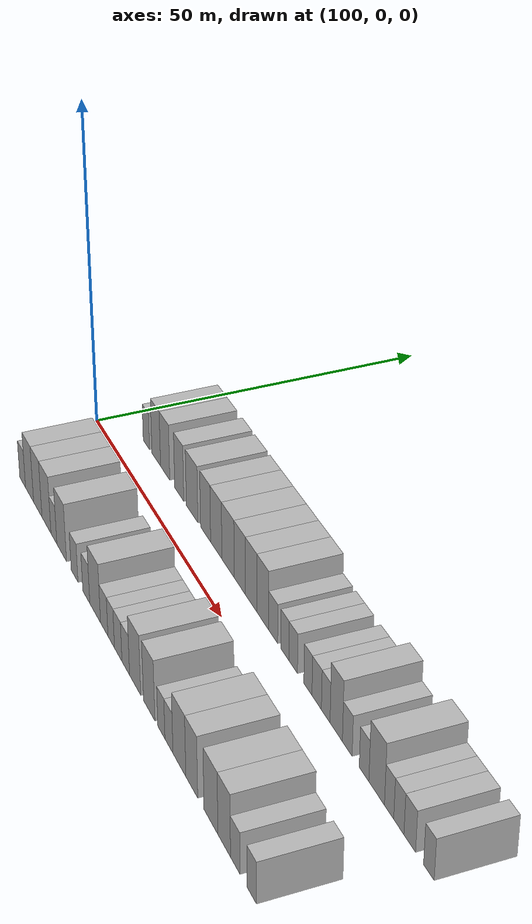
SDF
<sdf version="1.6">
 <world name="default">
  <model name="building_24">
   <static>1</static>
   <pose>108.6843 9.5000 0 0.000000 0.000000 1.570796</pose>
   <link name="link">
    <pose>0 0 3.00 0 0 0</pose>
    <collision name="collision"><geometry><box><size>10.0000 2.6677 6.0000</size></box></geometry></collision>
    <visual name="visual">
     <cast_shadows>0</cast_shadows>
     <geometry><box><size>10.0000 2.6677 6.0000</size></box></geometry>
     <material>
      <script>
       <uri>model://HANNAS_wall/materials/scripts</uri>
       <uri>model://HANNAS_wall/materials/textures</uri>
       <name>vrc/HANNAS_wall</name>
      </script>
     </material>
    </visual>
   </link>
  </model>
  <model name="building_25">
   <static>1</static>
   <pose>112.8357 9.5000 0 0.000000 0.000000 1.570796</pose>
   <link name="link">
    <pose>0 0 4.50 0 0 0</pose>
    <collision name="collision"><geometry><box><size>10.0000 3.6351 9.0000</size></box></geometry></collision>
    <visual name="visual">
     <cast_shadows>0</cast_shadows>
     <geometry><box><size>10.0000 3.6351 9.0000</size></box></geometry>
     <material>
      <script>
       <uri>model://HANNAS_wall/materials/scripts</uri>
       <uri>model://HANNAS_wall/materials/textures</uri>
       <name>vrc/HANNAS_wall</name>
      </script>
     </material>
    </visual>
   </link>
  </model>
  <model name="building_26">
   <static>1</static>
   <pose>116.5429 9.5000 0 0.000000 0.000000 1.570796</pose>
   <link name="link">
    <pose>0 0 4.50 0 0 0</pose>
    <collision name="collision"><geometry><box><size>10.0000 3.7794 9.0000</size></box></geometry></collision>
    <visual name="visual">
     <cast_shadows>0</cast_shadows>
     <geometry><box><size>10.0000 3.7794 9.0000</size></box></geometry>
     <material>
      <script>
       <uri>model://HANNAS_wall/materials/scripts</uri>
       <uri>model://HANNAS_wall/materials/textures</uri>
       <name>vrc/HANNAS_wall</name>
      </script>
     </material>
    </visual>
   </link>
  </model>
  <model name="building_27">
   <static>1</static>
   <pose>122.2377 9.5000 0 0.000000 0.000000 1.570796</pose>
   <link name="link">
    <pose>0 0 4.50 0 0 0</pose>
    <collision name="collision"><geometry><box><size>10.0000 3.6102 9.0000</size></box></geometry></collision>
    <visual name="visual">
     <cast_shadows>0</cast_shadows>
     <geometry><box><size>10.0000 3.6102 9.0000</size></box></geometry>
     <material>
      <script>
       <uri>model://HANNAS_wall/materials/scripts</uri>
       <uri>model://HANNAS_wall/materials/textures</uri>
       <name>vrc/HANNAS_wall</name>
      </script>
     </material>
    </visual>
   </link>
  </model>
  <model name="building_28">
   <static>1</static>
   <pose>127.2770 9.5000 0 0.000000 0.000000 1.570796</pose>
   <link name="link">
    <pose>0 0 4.50 0 0 0</pose>
    <collision name="collision"><geometry><box><size>10.0000 4.4685 9.0000</size></box></geometry></collision>
    <visual name="visual">
     <cast_shadows>0</cast_shadows>
     <geometry><box><size>10.0000 4.4685 9.0000</size></box></geometry>
     <material>
      <script>
       <uri>model://HANNAS_wall/materials/scripts</uri>
       <uri>model://HANNAS_wall/materials/textures</uri>
       <name>vrc/HANNAS_wall</name>
      </script>
     </material>
    </visual>
   </link>
  </model>
  <model name="building_29">
   <static>1</static>
   <pose>132.4076 9.5000 0 0.000000 0.000000 1.570796</pose>
   <link name="link">
    <pose>0 0 4.50 0 0 0</pose>
    <collision name="collision"><geometry><box><size>10.0000 3.7927 9.0000</size></box></geometry></collision>
    <visual name="visual">
     <cast_shadows>0</cast_shadows>
     <geometry><box><size>10.0000 3.7927 9.0000</size></box></geometry>
     <material>
      <script>
       <uri>model://HANNAS_wall/materials/scripts</uri>
       <uri>model://HANNAS_wall/materials/textures</uri>
       <name>vrc/HANNAS_wall</name>
      </script>
     </material>
    </visual>
   </link>
  </model>
  <model name="building_30">
   <static>1</static>
   <pose>136.3838 9.5000 0 0.000000 0.000000 1.570796</pose>
   <link name="link">
    <pose>0 0 4.50 0 0 0</pose>
    <collision name="collision"><geometry><box><size>10.0000 4.1597 9.0000</size></box></geometry></collision>
    <visual name="visual">
     <cast_shadows>0</cast_shadows>
     <geometry><box><size>10.0000 4.1597 9.0000</size></box></geometry>
     <material>
      <script>
       <uri>model://HANNAS_wall/materials/scripts</uri>
       <uri>model://HANNAS_wall/materials/textures</uri>
       <name>vrc/HANNAS_wall</name>
      </script>
     </material>
    </visual>
   </link>
  </model>
  <model name="building_31">
   <static>1</static>
   <pose>140.6726 9.5000 0 0.000000 0.000000 1.570796</pose>
   <link name="link">
    <pose>0 0 4.50 0 0 0</pose>
    <collision name="collision"><geometry><box><size>10.0000 4.4179 9.0000</size></box></geometry></collision>
    <visual name="visual">
     <cast_shadows>0</cast_shadows>
     <geometry><box><size>10.0000 4.4179 9.0000</size></box></geometry>
     <material>
      <script>
       <uri>model://HANNAS_wall/materials/scripts</uri>
       <uri>model://HANNAS_wall/materials/textures</uri>
       <name>vrc/HANNAS_wall</name>
      </script>
     </material>
    </visual>
   </link>
  </model>
  <model name="building_32">
   <static>1</static>
   <pose>144.8683 9.5000 0 0.000000 0.000000 1.570796</pose>
   <link name="link">
    <pose>0 0 4.50 0 0 0</pose>
    <collision name="collision"><geometry><box><size>10.0000 3.9735 9.0000</size></box></geometry></collision>
    <visual name="visual">
     <cast_shadows>0</cast_shadows>
     <geometry><box><size>10.0000 3.9735 9.0000</size></box></geometry>
     <material>
      <script>
       <uri>model://HANNAS_wall/materials/scripts</uri>
       <uri>model://HANNAS_wall/materials/textures</uri>
       <name>vrc/HANNAS_wall</name>
      </script>
     </material>
    </visual>
   </link>
  </model>
  <model name="building_33">
   <static>1</static>
   <pose>148.8022 9.5000 0 0.000000 0.000000 1.570796</pose>
   <link name="link">
    <pose>0 0 4.50 0 0 0</pose>
    <collision name="collision"><geometry><box><size>10.0000 3.8945 9.0000</size></box></geometry></collision>
    <visual name="visual">
     <cast_shadows>0</cast_shadows>
     <geometry><box><size>10.0000 3.8945 9.0000</size></box></geometry>
     <material>
      <script>
       <uri>model://HANNAS_wall/materials/scripts</uri>
       <uri>model://HANNAS_wall/materials/textures</uri>
       <name>vrc/HANNAS_wall</name>
      </script>
     </material>
    </visual>
   </link>
  </model>
  <model name="building_34">
   <static>1</static>
   <pose>152.7187 9.5000 0 0.000000 0.000000 1.570796</pose>
   <link name="link">
    <pose>0 0 4.50 0 0 0</pose>
    <collision name="collision"><geometry><box><size>10.0000 3.9385 9.0000</size></box></geometry></collision>
    <visual name="visual">
     <cast_shadows>0</cast_shadows>
     <geometry><box><size>10.0000 3.9385 9.0000</size></box></geometry>
     <material>
      <script>
       <uri>model://HANNAS_wall/materials/scripts</uri>
       <uri>model://HANNAS_wall/materials/textures</uri>
       <name>vrc/HANNAS_wall</name>
      </script>
     </material>
    </visual>
   </link>
  </model>
  <model name="building_35">
   <static>1</static>
   <pose>156.1728 9.5000 0 0.000000 0.000000 1.570796</pose>
   <link name="link">
    <pose>0 0 3.00 0 0 0</pose>
    <collision name="collision"><geometry><box><size>10.0000 2.9697 6.0000</size></box></geometry></collision>
    <visual name="visual">
     <cast_shadows>0</cast_shadows>
     <geometry><box><size>10.0000 2.9697 6.0000</size></box></geometry>
     <material>
      <script>
       <uri>model://HANNAS_wall/materials/scripts</uri>
       <uri>model://HANNAS_wall/materials/textures</uri>
       <name>vrc/HANNAS_wall</name>
      </script>
     </material>
    </visual>
   </link>
  </model>
  <model name="building_36">
   <static>1</static>
   <pose>159.9766 9.5000 0 0.000000 0.000000 1.570796</pose>
   <link name="link">
    <pose>0 0 3.00 0 0 0</pose>
    <collision name="collision"><geometry><box><size>10.0000 2.6379 6.0000</size></box></geometry></collision>
    <visual name="visual">
     <cast_shadows>0</cast_shadows>
     <geometry><box><size>10.0000 2.6379 6.0000</size></box></geometry>
     <material>
      <script>
       <uri>model://HANNAS_wall/materials/scripts</uri>
       <uri>model://HANNAS_wall/materials/textures</uri>
       <name>vrc/HANNAS_wall</name>
      </script>
     </material>
    </visual>
   </link>
  </model>
  <model name="building_37">
   <static>1</static>
   <pose>162.6449 9.5000 0 0.000000 0.000000 1.570796</pose>
   <link name="link">
    <pose>0 0 3.00 0 0 0</pose>
    <collision name="collision"><geometry><box><size>10.0000 2.6988 6.0000</size></box></geometry></collision>
    <visual name="visual">
     <cast_shadows>0</cast_shadows>
     <geometry><box><size>10.0000 2.6988 6.0000</size></box></geometry>
     <material>
      <script>
       <uri>model://HANNAS_wall/materials/scripts</uri>
       <uri>model://HANNAS_wall/materials/textures</uri>
       <name>vrc/HANNAS_wall</name>
      </script>
     </material>
    </visual>
   </link>
  </model>
  <model name="building_38">
   <static>1</static>
   <pose>167.2422 9.5000 0 0.000000 0.000000 1.570796</pose>
   <link name="link">
    <pose>0 0 3.00 0 0 0</pose>
    <collision name="collision"><geometry><box><size>10.0000 2.4957 6.0000</size></box></geometry></collision>
    <visual name="visual">
     <cast_shadows>0</cast_shadows>
     <geometry><box><size>10.0000 2.4957 6.0000</size></box></geometry>
     <material>
      <script>
       <uri>model://HANNAS_wall/materials/scripts</uri>
       <uri>model://HANNAS_wall/materials/textures</uri>
       <name>vrc/HANNAS_wall</name>
      </script>
     </material>
    </visual>
   </link>
  </model>
  <model name="building_39">
   <static>1</static>
   <pose>169.9129 9.5000 0 0.000000 0.000000 1.570796</pose>
   <link name="link">
    <pose>0 0 3.00 0 0 0</pose>
    <collision name="collision"><geometry><box><size>10.0000 2.8458 6.0000</size></box></geometry></collision>
    <visual name="visual">
     <cast_shadows>0</cast_shadows>
     <geometry><box><size>10.0000 2.8458 6.0000</size></box></geometry>
     <material>
      <script>
       <uri>model://HANNAS_wall/materials/scripts</uri>
       <uri>model://HANNAS_wall/materials/textures</uri>
       <name>vrc/HANNAS_wall</name>
      </script>
     </material>
    </visual>
   </link>
  </model>
  <model name="building_40">
   <static>1</static>
   <pose>172.6208 9.5000 0 0.000000 0.000000 1.570796</pose>
   <link name="link">
    <pose>0 0 3.00 0 0 0</pose>
    <collision name="collision"><geometry><box><size>10.0000 2.5699 6.0000</size></box></geometry></collision>
    <visual name="visual">
     <cast_shadows>0</cast_shadows>
     <geometry><box><size>10.0000 2.5699 6.0000</size></box></geometry>
     <material>
      <script>
       <uri>model://HANNAS_wall/materials/scripts</uri>
       <uri>model://HANNAS_wall/materials/textures</uri>
       <name>vrc/HANNAS_wall</name>
      </script>
     </material>
    </visual>
   </link>
  </model>
  <model name="building_41">
   <static>1</static>
   <pose>175.7122 9.5000 0 0.000000 0.000000 1.570796</pose>
   <link name="link">
    <pose>0 0 4.50 0 0 0</pose>
    <collision name="collision"><geometry><box><size>10.0000 3.6127 9.0000</size></box></geometry></collision>
    <visual name="visual">
     <cast_shadows>0</cast_shadows>
     <geometry><box><size>10.0000 3.6127 9.0000</size></box></geometry>
     <material>
      <script>
       <uri>model://HANNAS_wall/materials/scripts</uri>
       <uri>model://HANNAS_wall/materials/textures</uri>
       <name>vrc/HANNAS_wall</name>
      </script>
     </material>
    </visual>
   </link>
  </model>
  <model name="building_42">
   <static>1</static>
   <pose>178.9154 9.5000 0 0.000000 0.000000 1.570796</pose>
   <link name="link">
    <pose>0 0 3.00 0 0 0</pose>
    <collision name="collision"><geometry><box><size>10.0000 2.7937 6.0000</size></box></geometry></collision>
    <visual name="visual">
     <cast_shadows>0</cast_shadows>
     <geometry><box><size>10.0000 2.7937 6.0000</size></box></geometry>
     <material>
      <script>
       <uri>model://HANNAS_wall/materials/scripts</uri>
       <uri>model://HANNAS_wall/materials/textures</uri>
       <name>vrc/HANNAS_wall</name>
      </script>
     </material>
    </visual>
   </link>
  </model>
  <model name="building_43">
   <static>1</static>
   <pose>183.6461 9.5000 0 0.000000 0.000000 1.570796</pose>
   <link name="link">
    <pose>0 0 3.00 0 0 0</pose>
    <collision name="collision"><geometry><box><size>10.0000 2.6677 6.0000</size></box></geometry></collision>
    <visual name="visual">
     <cast_shadows>0</cast_shadows>
     <geometry><box><size>10.0000 2.6677 6.0000</size></box></geometry>
     <material>
      <script>
       <uri>model://HANNAS_wall/materials/scripts</uri>
       <uri>model://HANNAS_wall/materials/textures</uri>
       <name>vrc/HANNAS_wall</name>
      </script>
     </material>
    </visual>
   </link>
  </model>
  <model name="building_44">
   <static>1</static>
   <pose>187.0992 9.5000 0 0.000000 0.000000 1.570796</pose>
   <link name="link">
    <pose>0 0 4.50 0 0 0</pose>
    <collision name="collision"><geometry><box><size>10.0000 4.2384 9.0000</size></box></geometry></collision>
    <visual name="visual">
     <cast_shadows>0</cast_shadows>
     <geometry><box><size>10.0000 4.2384 9.0000</size></box></geometry>
     <material>
      <script>
       <uri>model://HANNAS_wall/materials/scripts</uri>
       <uri>model://HANNAS_wall/materials/textures</uri>
       <name>vrc/HANNAS_wall</name>
      </script>
     </material>
    </visual>
   </link>
  </model>
  <model name="building_45">
   <static>1</static>
   <pose>190.4469 9.5000 0 0.000000 0.000000 1.570796</pose>
   <link name="link">
    <pose>0 0 3.00 0 0 0</pose>
    <collision name="collision"><geometry><box><size>10.0000 2.4572 6.0000</size></box></geometry></collision>
    <visual name="visual">
     <cast_shadows>0</cast_shadows>
     <geometry><box><size>10.0000 2.4572 6.0000</size></box></geometry>
     <material>
      <script>
       <uri>model://HANNAS_wall/materials/scripts</uri>
       <uri>model://HANNAS_wall/materials/textures</uri>
       <name>vrc/HANNAS_wall</name>
      </script>
     </material>
    </visual>
   </link>
  </model>
  <model name="building_46">
   <static>1</static>
   <pose>193.0088 9.5000 0 0.000000 0.000000 1.570796</pose>
   <link name="link">
    <pose>0 0 3.00 0 0 0</pose>
    <collision name="collision"><geometry><box><size>10.0000 2.6666 6.0000</size></box></geometry></collision>
    <visual name="visual">
     <cast_shadows>0</cast_shadows>
     <geometry><box><size>10.0000 2.6666 6.0000</size></box></geometry>
     <material>
      <script>
       <uri>model://HANNAS_wall/materials/scripts</uri>
       <uri>model://HANNAS_wall/materials/textures</uri>
       <name>vrc/HANNAS_wall</name>
      </script>
     </material>
    </visual>
   </link>
  </model>
  <model name="building_47">
   <static>1</static>
   <pose>195.8379 9.5000 0 0.000000 0.000000 1.570796</pose>
   <link name="link">
    <pose>0 0 3.00 0 0 0</pose>
    <collision name="collision"><geometry><box><size>10.0000 2.9915 6.0000</size></box></geometry></collision>
    <visual name="visual">
     <cast_shadows>0</cast_shadows>
     <geometry><box><size>10.0000 2.9915 6.0000</size></box></geometry>
     <material>
      <script>
       <uri>model://HANNAS_wall/materials/scripts</uri>
       <uri>model://HANNAS_wall/materials/textures</uri>
       <name>vrc/HANNAS_wall</name>
      </script>
     </material>
    </visual>
   </link>
  </model>
  <model name="building_48">
   <static>1</static>
   <pose>200.6542 9.5000 0 0.000000 0.000000 1.570796</pose>
   <link name="link">
    <pose>0 0 3.00 0 0 0</pose>
    <collision name="collision"><geometry><box><size>10.0000 2.6412 6.0000</size></box></geometry></collision>
    <visual name="visual">
     <cast_shadows>0</cast_shadows>
     <geometry><box><size>10.0000 2.6412 6.0000</size></box></geometry>
     <material>
      <script>
       <uri>model://HANNAS_wall/materials/scripts</uri>
       <uri>model://HANNAS_wall/materials/textures</uri>
       <name>vrc/HANNAS_wall</name>
      </script>
     </material>
    </visual>
   </link>
  </model>
  <model name="building_73">
   <static>1</static>
   <pose>111.4580 -9.5000 0 0.000000 0.000000 1.570796</pose>
   <link name="link">
    <pose>0 0 3.00 0 0 0</pose>
    <collision name="collision"><geometry><box><size>10.0000 2.7554 6.0000</size></box></geometry></collision>
    <visual name="visual">
     <cast_shadows>0</cast_shadows>
     <geometry><box><size>10.0000 2.7554 6.0000</size></box></geometry>
     <material>
      <script>
       <uri>model://HANNAS_wall/materials/scripts</uri>
       <uri>model://HANNAS_wall/materials/textures</uri>
       <name>vrc/HANNAS_wall</name>
      </script>
     </material>
    </visual>
   </link>
  </model>
  <model name="building_74">
   <static>1</static>
   <pose>114.7533 -9.5000 0 0.000000 0.000000 1.570796</pose>
   <link name="link">
    <pose>0 0 4.50 0 0 0</pose>
    <collision name="collision"><geometry><box><size>10.0000 3.8352 9.0000</size></box></geometry></collision>
    <visual name="visual">
     <cast_shadows>0</cast_shadows>
     <geometry><box><size>10.0000 3.8352 9.0000</size></box></geometry>
     <material>
      <script>
       <uri>model://HANNAS_wall/materials/scripts</uri>
       <uri>model://HANNAS_wall/materials/textures</uri>
       <name>vrc/HANNAS_wall</name>
      </script>
     </material>
    </visual>
   </link>
  </model>
  <model name="building_75">
   <static>1</static>
   <pose>118.6020 -9.5000 0 0.000000 0.000000 1.570796</pose>
   <link name="link">
    <pose>0 0 4.50 0 0 0</pose>
    <collision name="collision"><geometry><box><size>10.0000 3.8622 9.0000</size></box></geometry></collision>
    <visual name="visual">
     <cast_shadows>0</cast_shadows>
     <geometry><box><size>10.0000 3.8622 9.0000</size></box></geometry>
     <material>
      <script>
       <uri>model://HANNAS_wall/materials/scripts</uri>
       <uri>model://HANNAS_wall/materials/textures</uri>
       <name>vrc/HANNAS_wall</name>
      </script>
     </material>
    </visual>
   </link>
  </model>
  <model name="building_76">
   <static>1</static>
   <pose>122.5785 -9.5000 0 0.000000 0.000000 1.570796</pose>
   <link name="link">
    <pose>0 0 4.50 0 0 0</pose>
    <collision name="collision"><geometry><box><size>10.0000 4.0908 9.0000</size></box></geometry></collision>
    <visual name="visual">
     <cast_shadows>0</cast_shadows>
     <geometry><box><size>10.0000 4.0908 9.0000</size></box></geometry>
     <material>
      <script>
       <uri>model://HANNAS_wall/materials/scripts</uri>
       <uri>model://HANNAS_wall/materials/textures</uri>
       <name>vrc/HANNAS_wall</name>
      </script>
     </material>
    </visual>
   </link>
  </model>
  <model name="building_77">
   <static>1</static>
   <pose>125.9290 -9.5000 0 0.000000 0.000000 1.570796</pose>
   <link name="link">
    <pose>0 0 3.00 0 0 0</pose>
    <collision name="collision"><geometry><box><size>10.0000 2.6101 6.0000</size></box></geometry></collision>
    <visual name="visual">
     <cast_shadows>0</cast_shadows>
     <geometry><box><size>10.0000 2.6101 6.0000</size></box></geometry>
     <material>
      <script>
       <uri>model://HANNAS_wall/materials/scripts</uri>
       <uri>model://HANNAS_wall/materials/textures</uri>
       <name>vrc/HANNAS_wall</name>
      </script>
     </material>
    </visual>
   </link>
  </model>
  <model name="building_78">
   <static>1</static>
   <pose>129.3502 -9.5000 0 0.000000 0.000000 1.570796</pose>
   <link name="link">
    <pose>0 0 4.50 0 0 0</pose>
    <collision name="collision"><geometry><box><size>10.0000 4.2325 9.0000</size></box></geometry></collision>
    <visual name="visual">
     <cast_shadows>0</cast_shadows>
     <geometry><box><size>10.0000 4.2325 9.0000</size></box></geometry>
     <material>
      <script>
       <uri>model://HANNAS_wall/materials/scripts</uri>
       <uri>model://HANNAS_wall/materials/textures</uri>
       <name>vrc/HANNAS_wall</name>
      </script>
     </material>
    </visual>
   </link>
  </model>
  <model name="building_79">
   <static>1</static>
   <pose>134.9087 -9.5000 0 0.000000 0.000000 1.570796</pose>
   <link name="link">
    <pose>0 0 3.00 0 0 0</pose>
    <collision name="collision"><geometry><box><size>10.0000 2.8845 6.0000</size></box></geometry></collision>
    <visual name="visual">
     <cast_shadows>0</cast_shadows>
     <geometry><box><size>10.0000 2.8845 6.0000</size></box></geometry>
     <material>
      <script>
       <uri>model://HANNAS_wall/materials/scripts</uri>
       <uri>model://HANNAS_wall/materials/textures</uri>
       <name>vrc/HANNAS_wall</name>
      </script>
     </material>
    </visual>
   </link>
  </model>
  <model name="building_80">
   <static>1</static>
   <pose>139.7949 -9.5000 0 0.000000 0.000000 1.570796</pose>
   <link name="link">
    <pose>0 0 3.00 0 0 0</pose>
    <collision name="collision"><geometry><box><size>10.0000 2.8881 6.0000</size></box></geometry></collision>
    <visual name="visual">
     <cast_shadows>0</cast_shadows>
     <geometry><box><size>10.0000 2.8881 6.0000</size></box></geometry>
     <material>
      <script>
       <uri>model://HANNAS_wall/materials/scripts</uri>
       <uri>model://HANNAS_wall/materials/textures</uri>
       <name>vrc/HANNAS_wall</name>
      </script>
     </material>
    </visual>
   </link>
  </model>
  <model name="building_81">
   <static>1</static>
   <pose>143.4044 -9.5000 0 0.000000 0.000000 1.570796</pose>
   <link name="link">
    <pose>0 0 4.50 0 0 0</pose>
    <collision name="collision"><geometry><box><size>10.0000 4.3308 9.0000</size></box></geometry></collision>
    <visual name="visual">
     <cast_shadows>0</cast_shadows>
     <geometry><box><size>10.0000 4.3308 9.0000</size></box></geometry>
     <material>
      <script>
       <uri>model://HANNAS_wall/materials/scripts</uri>
       <uri>model://HANNAS_wall/materials/textures</uri>
       <name>vrc/HANNAS_wall</name>
      </script>
     </material>
    </visual>
   </link>
  </model>
  <model name="building_82">
   <static>1</static>
   <pose>147.0414 -9.5000 0 0.000000 0.000000 1.570796</pose>
   <link name="link">
    <pose>0 0 3.00 0 0 0</pose>
    <collision name="collision"><geometry><box><size>10.0000 2.9432 6.0000</size></box></geometry></collision>
    <visual name="visual">
     <cast_shadows>0</cast_shadows>
     <geometry><box><size>10.0000 2.9432 6.0000</size></box></geometry>
     <material>
      <script>
       <uri>model://HANNAS_wall/materials/scripts</uri>
       <uri>model://HANNAS_wall/materials/textures</uri>
       <name>vrc/HANNAS_wall</name>
      </script>
     </material>
    </visual>
   </link>
  </model>
  <model name="building_83">
   <static>1</static>
   <pose>149.7767 -9.5000 0 0.000000 0.000000 1.570796</pose>
   <link name="link">
    <pose>0 0 3.00 0 0 0</pose>
    <collision name="collision"><geometry><box><size>10.0000 2.5275 6.0000</size></box></geometry></collision>
    <visual name="visual">
     <cast_shadows>0</cast_shadows>
     <geometry><box><size>10.0000 2.5275 6.0000</size></box></geometry>
     <material>
      <script>
       <uri>model://HANNAS_wall/materials/scripts</uri>
       <uri>model://HANNAS_wall/materials/textures</uri>
       <name>vrc/HANNAS_wall</name>
      </script>
     </material>
    </visual>
   </link>
  </model>
  <model name="building_84">
   <static>1</static>
   <pose>152.4683 -9.5000 0 0.000000 0.000000 1.570796</pose>
   <link name="link">
    <pose>0 0 3.00 0 0 0</pose>
    <collision name="collision"><geometry><box><size>10.0000 2.8556 6.0000</size></box></geometry></collision>
    <visual name="visual">
     <cast_shadows>0</cast_shadows>
     <geometry><box><size>10.0000 2.8556 6.0000</size></box></geometry>
     <material>
      <script>
       <uri>model://HANNAS_wall/materials/scripts</uri>
       <uri>model://HANNAS_wall/materials/textures</uri>
       <name>vrc/HANNAS_wall</name>
      </script>
     </material>
    </visual>
   </link>
  </model>
  <model name="building_85">
   <static>1</static>
   <pose>155.3351 -9.5000 0 0.000000 0.000000 1.570796</pose>
   <link name="link">
    <pose>0 0 3.00 0 0 0</pose>
    <collision name="collision"><geometry><box><size>10.0000 2.8780 6.0000</size></box></geometry></collision>
    <visual name="visual">
     <cast_shadows>0</cast_shadows>
     <geometry><box><size>10.0000 2.8780 6.0000</size></box></geometry>
     <material>
      <script>
       <uri>model://HANNAS_wall/materials/scripts</uri>
       <uri>model://HANNAS_wall/materials/textures</uri>
       <name>vrc/HANNAS_wall</name>
      </script>
     </material>
    </visual>
   </link>
  </model>
  <model name="building_86">
   <static>1</static>
   <pose>158.8288 -9.5000 0 0.000000 0.000000 1.570796</pose>
   <link name="link">
    <pose>0 0 4.50 0 0 0</pose>
    <collision name="collision"><geometry><box><size>10.0000 4.1093 9.0000</size></box></geometry></collision>
    <visual name="visual">
     <cast_shadows>0</cast_shadows>
     <geometry><box><size>10.0000 4.1093 9.0000</size></box></geometry>
     <material>
      <script>
       <uri>model://HANNAS_wall/materials/scripts</uri>
       <uri>model://HANNAS_wall/materials/textures</uri>
       <name>vrc/HANNAS_wall</name>
      </script>
     </material>
    </visual>
   </link>
  </model>
  <model name="building_87">
   <static>1</static>
   <pose>163.9238 -9.5000 0 0.000000 0.000000 1.570796</pose>
   <link name="link">
    <pose>0 0 4.50 0 0 0</pose>
    <collision name="collision"><geometry><box><size>10.0000 4.0807 9.0000</size></box></geometry></collision>
    <visual name="visual">
     <cast_shadows>0</cast_shadows>
     <geometry><box><size>10.0000 4.0807 9.0000</size></box></geometry>
     <material>
      <script>
       <uri>model://HANNAS_wall/materials/scripts</uri>
       <uri>model://HANNAS_wall/materials/textures</uri>
       <name>vrc/HANNAS_wall</name>
      </script>
     </material>
    </visual>
   </link>
  </model>
  <model name="building_88">
   <static>1</static>
   <pose>168.2005 -9.5000 0 0.000000 0.000000 1.570796</pose>
   <link name="link">
    <pose>0 0 3.00 0 0 0</pose>
    <collision name="collision"><geometry><box><size>10.0000 2.4728 6.0000</size></box></geometry></collision>
    <visual name="visual">
     <cast_shadows>0</cast_shadows>
     <geometry><box><size>10.0000 2.4728 6.0000</size></box></geometry>
     <material>
      <script>
       <uri>model://HANNAS_wall/materials/scripts</uri>
       <uri>model://HANNAS_wall/materials/textures</uri>
       <name>vrc/HANNAS_wall</name>
      </script>
     </material>
    </visual>
   </link>
  </model>
  <model name="building_89">
   <static>1</static>
   <pose>170.8061 -9.5000 0 0.000000 0.000000 1.570796</pose>
   <link name="link">
    <pose>0 0 3.00 0 0 0</pose>
    <collision name="collision"><geometry><box><size>10.0000 2.7384 6.0000</size></box></geometry></collision>
    <visual name="visual">
     <cast_shadows>0</cast_shadows>
     <geometry><box><size>10.0000 2.7384 6.0000</size></box></geometry>
     <material>
      <script>
       <uri>model://HANNAS_wall/materials/scripts</uri>
       <uri>model://HANNAS_wall/materials/textures</uri>
       <name>vrc/HANNAS_wall</name>
      </script>
     </material>
    </visual>
   </link>
  </model>
  <model name="building_90">
   <static>1</static>
   <pose>174.3310 -9.5000 0 0.000000 0.000000 1.570796</pose>
   <link name="link">
    <pose>0 0 4.50 0 0 0</pose>
    <collision name="collision"><geometry><box><size>10.0000 4.3114 9.0000</size></box></geometry></collision>
    <visual name="visual">
     <cast_shadows>0</cast_shadows>
     <geometry><box><size>10.0000 4.3114 9.0000</size></box></geometry>
     <material>
      <script>
       <uri>model://HANNAS_wall/materials/scripts</uri>
       <uri>model://HANNAS_wall/materials/textures</uri>
       <name>vrc/HANNAS_wall</name>
      </script>
     </material>
    </visual>
   </link>
  </model>
  <model name="building_91">
   <static>1</static>
   <pose>178.4194 -9.5000 0 0.000000 0.000000 1.570796</pose>
   <link name="link">
    <pose>0 0 4.50 0 0 0</pose>
    <collision name="collision"><geometry><box><size>10.0000 3.8654 9.0000</size></box></geometry></collision>
    <visual name="visual">
     <cast_shadows>0</cast_shadows>
     <geometry><box><size>10.0000 3.8654 9.0000</size></box></geometry>
     <material>
      <script>
       <uri>model://HANNAS_wall/materials/scripts</uri>
       <uri>model://HANNAS_wall/materials/textures</uri>
       <name>vrc/HANNAS_wall</name>
      </script>
     </material>
    </visual>
   </link>
  </model>
  <model name="building_92">
   <static>1</static>
   <pose>184.5234 -9.5000 0 0.000000 0.000000 1.570796</pose>
   <link name="link">
    <pose>0 0 4.50 0 0 0</pose>
    <collision name="collision"><geometry><box><size>10.0000 4.3425 9.0000</size></box></geometry></collision>
    <visual name="visual">
     <cast_shadows>0</cast_shadows>
     <geometry><box><size>10.0000 4.3425 9.0000</size></box></geometry>
     <material>
      <script>
       <uri>model://HANNAS_wall/materials/scripts</uri>
       <uri>model://HANNAS_wall/materials/textures</uri>
       <name>vrc/HANNAS_wall</name>
      </script>
     </material>
    </visual>
   </link>
  </model>
  <model name="building_93">
   <static>1</static>
   <pose>188.6107 -9.5000 0 0.000000 0.000000 1.570796</pose>
   <link name="link">
    <pose>0 0 4.50 0 0 0</pose>
    <collision name="collision"><geometry><box><size>10.0000 3.8320 9.0000</size></box></geometry></collision>
    <visual name="visual">
     <cast_shadows>0</cast_shadows>
     <geometry><box><size>10.0000 3.8320 9.0000</size></box></geometry>
     <material>
      <script>
       <uri>model://HANNAS_wall/materials/scripts</uri>
       <uri>model://HANNAS_wall/materials/textures</uri>
       <name>vrc/HANNAS_wall</name>
      </script>
     </material>
    </visual>
   </link>
  </model>
  <model name="building_94">
   <static>1</static>
   <pose>191.9510 -9.5000 0 0.000000 0.000000 1.570796</pose>
   <link name="link">
    <pose>0 0 3.00 0 0 0</pose>
    <collision name="collision"><geometry><box><size>10.0000 2.8488 6.0000</size></box></geometry></collision>
    <visual name="visual">
     <cast_shadows>0</cast_shadows>
     <geometry><box><size>10.0000 2.8488 6.0000</size></box></geometry>
     <material>
      <script>
       <uri>model://HANNAS_wall/materials/scripts</uri>
       <uri>model://HANNAS_wall/materials/textures</uri>
       <name>vrc/HANNAS_wall</name>
      </script>
     </material>
    </visual>
   </link>
  </model>
  <model name="building_95">
   <static>1</static>
   <pose>196.7569 -9.5000 0 0.000000 0.000000 1.570796</pose>
   <link name="link">
    <pose>0 0 3.00 0 0 0</pose>
    <collision name="collision"><geometry><box><size>10.0000 2.7631 6.0000</size></box></geometry></collision>
    <visual name="visual">
     <cast_shadows>0</cast_shadows>
     <geometry><box><size>10.0000 2.7631 6.0000</size></box></geometry>
     <material>
      <script>
       <uri>model://HANNAS_wall/materials/scripts</uri>
       <uri>model://HANNAS_wall/materials/textures</uri>
       <name>vrc/HANNAS_wall</name>
      </script>
     </material>
    </visual>
   </link>
  </model>
 </world>
</sdf>
